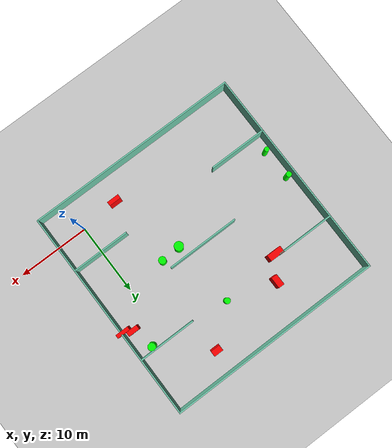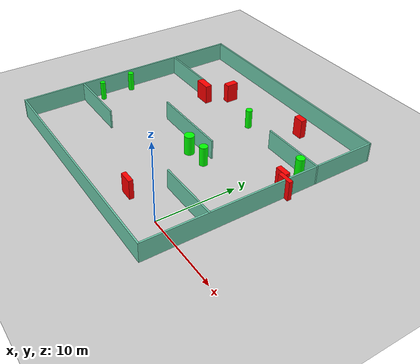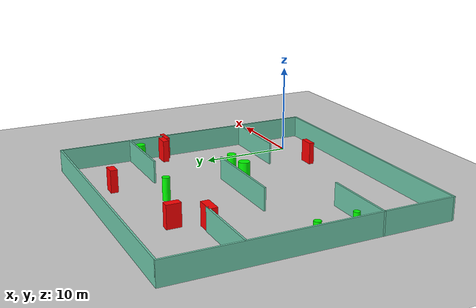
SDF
<sdf version="1.7">
 <world name="default">
  <light name="sun" type="directional">
   <pose>0 0 10 0 -0 0</pose>
   <diffuse>0.8 0.8 0.8 1</diffuse>
   <specular>0.2 0.2 0.2 1</specular>
   <attenuation>
    <range>1000</range>
    <constant>0.9</constant>
    <linear>0.01</linear>
    <quadratic>0.001</quadratic>
   </attenuation>
   <direction>-0.5 0.1 -0.9</direction>
   <spot><inner_angle>0</inner_angle><outer_angle>0</outer_angle><falloff>0</falloff></spot>
  </light>
  <model name="ground_plane">
   <static>1</static>
   <link name="link">
    <collision name="collision">
     <geometry><plane><normal>0 0 1</normal><size>100 100</size></plane></geometry>
     <surface>
      <contact><collide_bitmask>65535</collide_bitmask></contact>
      <friction><ode><mu>100</mu><mu2>50</mu2></ode></friction>
     </surface>
    </collision>
    <visual name="visual">
     <cast_shadows>0</cast_shadows>
     <geometry><plane><normal>0 0 1</normal><size>100 100</size></plane></geometry>
     <material>
      <script><uri>file://media/materials/scripts/gazebo.material</uri><name>Gazebo/Grey</name></script>
     </material>
    </visual>
   </link>
  </model>
  <gravity>0 0 -9.8</gravity>
  <magnetic_field>6e-06 2.3e-05 -4.2e-05</magnetic_field>
  <atmosphere type="adiabatic"/>
  <physics type="ode">
   <max_step_size>0.001</max_step_size>
   <real_time_factor>1</real_time_factor>
   <real_time_update_rate>1000</real_time_update_rate>
  </physics>
  <scene><ambient>0.4 0.4 0.4 1</ambient><background>0.7 0.7 0.7 1</background><shadows>1</shadows></scene>
  <spherical_coordinates>
   <surface_model>EARTH_WGS84</surface_model>
   <latitude_deg>0</latitude_deg>
   <longitude_deg>0</longitude_deg>
   <elevation>0</elevation>
   <heading_deg>0</heading_deg>
  </spherical_coordinates>
  <model name="my_base_walls">
   <link name="Wall_10">
    <collision name="Wall_10_Collision">
     <geometry><box><size>8.2 0.2 2.5</size></box></geometry>
     <pose>0 0 1.25 0 -0 0</pose>
    </collision>
    <visual name="Wall_10_Visual">
     <pose>0 0 1.25 0 -0 0</pose>
     <geometry><box><size>8.2 0.2 2.5</size></box></geometry>
     <material>
      <script><uri>file://media/materials/scripts/gazebo.material</uri><name>Gazebo/Grey</name></script>
      <ambient>0.435294 0.796078 0.67451 1</ambient>
     </material>
     <meta><layer>0</layer></meta>
    </visual>
    <pose>-11 -7 0 0 -0 0</pose>
   </link>
   <link name="Wall_12">
    <collision name="Wall_12_Collision">
     <geometry><box><size>8.2 0.2 2.5</size></box></geometry>
     <pose>0 0 1.25 0 -0 0</pose>
    </collision>
    <visual name="Wall_12_Visual">
     <pose>0 0 1.25 0 -0 0</pose>
     <geometry><box><size>8.2 0.2 2.5</size></box></geometry>
     <material>
      <script><uri>file://media/materials/scripts/gazebo.material</uri><name>Gazebo/Grey</name></script>
      <ambient>0.435294 0.796078 0.67451 1</ambient>
     </material>
     <meta><layer>0</layer></meta>
    </visual>
    <pose>-11 7 0 0 -0 0</pose>
   </link>
   <link name="Wall_14">
    <collision name="Wall_14_Collision">
     <geometry><box><size>8.2 0.2 2.5</size></box></geometry>
     <pose>0 0 1.25 0 -0 0</pose>
    </collision>
    <visual name="Wall_14_Visual">
     <pose>0 0 1.25 0 -0 0</pose>
     <geometry><box><size>8.2 0.2 2.5</size></box></geometry>
     <material>
      <script><uri>file://media/materials/scripts/gazebo.material</uri><name>Gazebo/Grey</name></script>
      <ambient>0.435294 0.796078 0.67451 1</ambient>
     </material>
     <meta><layer>0</layer></meta>
    </visual>
    <pose>11 7 0 0 -0 3.14159</pose>
   </link>
   <link name="Wall_16">
    <collision name="Wall_16_Collision">
     <geometry><box><size>10.2 0.2 2.5</size></box></geometry>
     <pose>0 0 1.25 0 -0 0</pose>
    </collision>
    <visual name="Wall_16_Visual">
     <pose>0 0 1.25 0 -0 0</pose>
     <geometry><box><size>10.2 0.2 2.5</size></box></geometry>
     <material>
      <script><uri>file://media/materials/scripts/gazebo.material</uri><name>Gazebo/Grey</name></script>
      <ambient>0.435294 0.796078 0.67451 1</ambient>
     </material>
     <meta><layer>0</layer></meta>
    </visual>
    <pose>0 0 0 0 -0 3.14159</pose>
   </link>
   <link name="Wall_2">
    <collision name="Wall_2_Collision">
     <geometry><box><size>30.2 0.2 2.5</size></box></geometry>
     <pose>0 0 1.25 0 -0 0</pose>
    </collision>
    <visual name="Wall_2_Visual">
     <pose>0 0 1.25 0 -0 0</pose>
     <geometry><box><size>30.2 0.2 2.5</size></box></geometry>
     <material>
      <script><uri>file://media/materials/scripts/gazebo.material</uri><name>Gazebo/Grey</name></script>
      <ambient>0.435294 0.796078 0.67451 1</ambient>
     </material>
     <meta><layer>0</layer></meta>
    </visual>
    <pose>0 -15 0 0 -0 3.14159</pose>
   </link>
   <link name="Wall_3">
    <collision name="Wall_3_Collision">
     <geometry><box><size>30.2 0.2 2.5</size></box></geometry>
     <pose>0 0 1.25 0 -0 0</pose>
    </collision>
    <visual name="Wall_3_Visual">
     <pose>0 0 1.25 0 -0 0</pose>
     <geometry><box><size>30.2 0.2 2.5</size></box></geometry>
     <material>
      <script><uri>file://media/materials/scripts/gazebo.material</uri><name>Gazebo/Grey</name></script>
      <ambient>0.435294 0.796078 0.67451 1</ambient>
     </material>
     <meta><layer>0</layer></meta>
    </visual>
    <pose>-15 0 0 0 -0 1.5708</pose>
   </link>
   <link name="Wall_4">
    <collision name="Wall_4_Collision">
     <geometry><box><size>30.2 0.2 2.5</size></box></geometry>
     <pose>0 0 1.25 0 -0 0</pose>
    </collision>
    <visual name="Wall_4_Visual">
     <pose>0 0 1.25 0 -0 0</pose>
     <geometry><box><size>30.2 0.2 2.5</size></box></geometry>
     <material>
      <script><uri>file://media/materials/scripts/gazebo.material</uri><name>Gazebo/Grey</name></script>
      <ambient>0.435294 0.796078 0.67451 1</ambient>
     </material>
     <meta><layer>0</layer></meta>
    </visual>
    <pose>0 15 0 0 -0 0</pose>
   </link>
   <link name="Wall_6">
    <collision name="Wall_6_Collision">
     <geometry><box><size>30.2 0.2 2.5</size></box></geometry>
     <pose>0 0 1.25 0 -0 0</pose>
    </collision>
    <visual name="Wall_6_Visual">
     <pose>0 0 1.25 0 -0 0</pose>
     <geometry><box><size>30.2 0.2 2.5</size></box></geometry>
     <material>
      <script><uri>file://media/materials/scripts/gazebo.material</uri><name>Gazebo/Grey</name></script>
      <ambient>0.435294 0.796078 0.67451 1</ambient>
     </material>
     <meta><layer>0</layer></meta>
    </visual>
    <pose>15 0 0 0 -0 1.5708</pose>
   </link>
   <link name="Wall_8">
    <collision name="Wall_8_Collision">
     <geometry><box><size>8.2 0.2 2.5</size></box></geometry>
     <pose>0 0 1.25 0 -0 0</pose>
    </collision>
    <visual name="Wall_8_Visual">
     <pose>0 0 1.25 0 -0 0</pose>
     <geometry><box><size>8.2 0.2 2.5</size></box></geometry>
     <material>
      <script><uri>file://media/materials/scripts/gazebo.material</uri><name>Gazebo/Grey</name></script>
      <ambient>0.435294 0.796078 0.67451 1</ambient>
     </material>
     <meta><layer>0</layer></meta>
    </visual>
    <pose>11 -7 0 0 -0 3.14159</pose>
   </link>
   <static>1</static>
   <pose>-11 11 0 0 -0 0</pose>
  </model>
  <model name="cylinder1">
   <static>1</static>
   <link name="link">
    <inertial>
     <mass>1</mass>
     <inertia><ixx>0.5</ixx><ixy>0</ixy><ixz>0</ixz><iyy>0.5</iyy><iyz>0</iyz><izz>1</izz></inertia>
    </inertial>
    <collision name="collision">
     <geometry><cylinder><radius>0.4106500544839046</radius><length>2.5</length></cylinder></geometry>
    </collision>
    <visual name="visual">
     <geometry><cylinder><radius>0.4106500544839046</radius><length>2.5</length></cylinder></geometry>
     <material>
      <ambient>0 1 0 1</ambient>
      <diffuse>0 1 0 1</diffuse>
      <specular>0.1 0.1 0.1 1</specular>
      <emissive>0 0 0 0</emissive>
     </material>
    </visual>
   </link>
   <pose>-9.054721459076424 18.60676451151015 1.25 0 0 0</pose>
  </model>
  <model name="cylinder2">
   <static>1</static>
   <link name="link">
    <inertial>
     <mass>1</mass>
     <inertia><ixx>0.5</ixx><ixy>0</ixy><ixz>0</ixz><iyy>0.5</iyy><iyz>0</iyz><izz>1</izz></inertia>
    </inertial>
    <collision name="collision">
     <geometry><cylinder><radius>0.5118480504453533</radius><length>2.5</length></cylinder></geometry>
    </collision>
    <visual name="visual">
     <geometry><cylinder><radius>0.5118480504453533</radius><length>2.5</length></cylinder></geometry>
     <material>
      <ambient>0 1 0 1</ambient>
      <diffuse>0 1 0 1</diffuse>
      <specular>0.1 0.1 0.1 1</specular>
      <emissive>0 0 0 0</emissive>
     </material>
    </visual>
   </link>
   <pose>-5.5968611159745905 9.599844244479723 1.25 0 0 0</pose>
  </model>
  <model name="cylinder3">
   <static>1</static>
   <link name="link">
    <inertial>
     <mass>1</mass>
     <inertia><ixx>0.5</ixx><ixy>0</ixy><ixz>0</ixz><iyy>0.5</iyy><iyz>0</iyz><izz>1</izz></inertia>
    </inertial>
    <collision name="collision">
     <geometry><cylinder><radius>0.33039707862885</radius><length>2.5</length></cylinder></geometry>
    </collision>
    <visual name="visual">
     <geometry><cylinder><radius>0.33039707862885</radius><length>2.5</length></cylinder></geometry>
     <material>
      <ambient>0 1 0 1</ambient>
      <diffuse>0 1 0 1</diffuse>
      <specular>0.1 0.1 0.1 1</specular>
      <emissive>0 0 0 0</emissive>
     </material>
    </visual>
   </link>
   <pose>-24.9286867326434 6.2790587428391635 1.25 0 0 0</pose>
  </model>
  <model name="cylinder4">
   <static>1</static>
   <link name="link">
    <inertial>
     <mass>1</mass>
     <inertia><ixx>0.5</ixx><ixy>0</ixy><ixz>0</ixz><iyy>0.5</iyy><iyz>0</iyz><izz>1</izz></inertia>
    </inertial>
    <collision name="collision">
     <geometry><cylinder><radius>0.37471390260744314</radius><length>2.5</length></cylinder></geometry>
    </collision>
    <visual name="visual">
     <geometry><cylinder><radius>0.37471390260744314</radius><length>2.5</length></cylinder></geometry>
     <material>
      <ambient>0 1 0 1</ambient>
      <diffuse>0 1 0 1</diffuse>
      <specular>0.1 0.1 0.1 1</specular>
      <emissive>0 0 0 0</emissive>
     </material>
    </visual>
   </link>
   <pose>-25.174728715863743 10.575330672027734 1.25 0 0 0</pose>
  </model>
  <model name="cylinder5">
   <static>1</static>
   <link name="link">
    <inertial>
     <mass>1</mass>
     <inertia><ixx>0.5</ixx><ixy>0</ixy><ixz>0</ixz><iyy>0.5</iyy><iyz>0</iyz><izz>1</izz></inertia>
    </inertial>
    <collision name="collision">
     <geometry><cylinder><radius>0.5292410444817788</radius><length>2.5</length></cylinder></geometry>
    </collision>
    <visual name="visual">
     <geometry><cylinder><radius>0.5292410444817788</radius><length>2.5</length></cylinder></geometry>
     <material>
      <ambient>0 1 0 1</ambient>
      <diffuse>0 1 0 1</diffuse>
      <specular>0.1 0.1 0.1 1</specular>
      <emissive>0 0 0 0</emissive>
     </material>
    </visual>
   </link>
   <pose>1.9531167254813795 17.451934820535882 1.25 0 0 0</pose>
  </model>
  <model name="cylinder6">
   <static>1</static>
   <link name="link">
    <inertial>
     <mass>1</mass>
     <inertia><ixx>0.5</ixx><ixy>0</ixy><ixz>0</ixz><iyy>0.5</iyy><iyz>0</iyz><izz>1</izz></inertia>
    </inertial>
    <collision name="collision">
     <geometry><cylinder><radius>0.6293454623836201</radius><length>2.5</length></cylinder></geometry>
    </collision>
    <visual name="visual">
     <geometry><cylinder><radius>0.6293454623836201</radius><length>2.5</length></cylinder></geometry>
     <material>
      <ambient>0 1 0 1</ambient>
      <diffuse>0 1 0 1</diffuse>
      <specular>0.1 0.1 0.1 1</specular>
      <emissive>0 0 0 0</emissive>
     </material>
    </visual>
   </link>
   <pose>-8.342117903220547 9.420620918297862 1.25 0 0 0</pose>
  </model>
  <model name="box1">
   <static>1</static>
   <link name="link">
    <inertial>
     <mass>1</mass>
     <inertia><ixx>0.083</ixx><ixy>0</ixy><ixz>0</ixz><iyy>0.083</iyy><iyz>0</iyz><izz>0.083</izz></inertia>
    </inertial>
    <collision name="collision">
     <geometry><box><size>1.6841102793904872 0.5659326188970812 2.5</size></box></geometry>
    </collision>
    <visual name="visual">
     <geometry><box><size>1.6841102793904872 0.5659326188970812 2.5</size></box></geometry>
     <material>
      <ambient>1 0 0 1</ambient>
      <diffuse>1 0 0 1</diffuse>
      <specular>0.1 0.1 0.1 1</specular>
      <emissive>0 0 0 0</emissive>
     </material>
    </visual>
    <sensor name="my_contact" type="contact">
     <contact><collision>box_collision</collision><topic>__default_topic__</topic></contact>
    </sensor>
   </link>
   <pose>-5.314515116517054 -0.28715394437896835 1.25 0 0 0</pose>
  </model>
  <model name="box2">
   <static>1</static>
   <link name="link">
    <inertial>
     <mass>1</mass>
     <inertia><ixx>0.083</ixx><ixy>0</ixy><ixz>0</ixz><iyy>0.083</iyy><iyz>0</iyz><izz>0.083</izz></inertia>
    </inertial>
    <collision name="collision">
     <geometry><box><size>1.3263633139924682 0.7950982696627695 2.5</size></box></geometry>
    </collision>
    <visual name="visual">
     <geometry><box><size>1.3263633139924682 0.7950982696627695 2.5</size></box></geometry>
     <material>
      <ambient>1 0 0 1</ambient>
      <diffuse>1 0 0 1</diffuse>
      <specular>0.1 0.1 0.1 1</specular>
      <emissive>0 0 0 0</emissive>
     </material>
    </visual>
    <sensor name="my_contact" type="contact">
     <contact><collision>box_collision</collision><topic>__default_topic__</topic></contact>
    </sensor>
   </link>
   <pose>-4.220622203774035 22.74779064343015 1.25 0 0 0</pose>
  </model>
  <model name="box3">
   <static>1</static>
   <link name="link">
    <inertial>
     <mass>1</mass>
     <inertia><ixx>0.083</ixx><ixy>0</ixy><ixz>0</ixz><iyy>0.083</iyy><iyz>0</iyz><izz>0.083</izz></inertia>
    </inertial>
    <collision name="collision">
     <geometry><box><size>1.5702150471236587 0.6550131446663956 2.5</size></box></geometry>
    </collision>
    <visual name="visual">
     <geometry><box><size>1.5702150471236587 0.6550131446663956 2.5</size></box></geometry>
     <material>
      <ambient>1 0 0 1</ambient>
      <diffuse>1 0 0 1</diffuse>
      <specular>0.1 0.1 0.1 1</specular>
      <emissive>0 0 0 0</emissive>
     </material>
    </visual>
    <sensor name="my_contact" type="contact">
     <contact><collision>box_collision</collision><topic>__default_topic__</topic></contact>
    </sensor>
   </link>
   <pose>2.645004022889978 14.419265566474603 1.25 0 0 0</pose>
  </model>
  <model name="box4">
   <static>1</static>
   <link name="link">
    <inertial>
     <mass>1</mass>
     <inertia><ixx>0.083</ixx><ixy>0</ixy><ixz>0</ixz><iyy>0.083</iyy><iyz>0</iyz><izz>0.083</izz></inertia>
    </inertial>
    <collision name="collision">
     <geometry><box><size>0.8355857179920998 1.5650551347938442 2.5</size></box></geometry>
    </collision>
    <visual name="visual">
     <geometry><box><size>0.8355857179920998 1.5650551347938442 2.5</size></box></geometry>
     <material>
      <ambient>1 0 0 1</ambient>
      <diffuse>1 0 0 1</diffuse>
      <specular>0.1 0.1 0.1 1</specular>
      <emissive>0 0 0 0</emissive>
     </material>
    </visual>
    <sensor name="my_contact" type="contact">
     <contact><collision>box_collision</collision><topic>__default_topic__</topic></contact>
    </sensor>
   </link>
   <pose>-15.599267574147273 20.50884042169574 1.25 0 0 0</pose>
  </model>
  <model name="box5">
   <static>1</static>
   <link name="link">
    <inertial>
     <mass>1</mass>
     <inertia><ixx>0.083</ixx><ixy>0</ixy><ixz>0</ixz><iyy>0.083</iyy><iyz>0</iyz><izz>0.083</izz></inertia>
    </inertial>
    <collision name="collision">
     <geometry><box><size>2.0695947255978133 0.888827692865219 2.5</size></box></geometry>
    </collision>
    <visual name="visual">
     <geometry><box><size>2.0695947255978133 0.888827692865219 2.5</size></box></geometry>
     <material>
      <ambient>1 0 0 1</ambient>
      <diffuse>1 0 0 1</diffuse>
      <specular>0.1 0.1 0.1 1</specular>
      <emissive>0 0 0 0</emissive>
     </material>
    </visual>
    <sensor name="my_contact" type="contact">
     <contact><collision>box_collision</collision><topic>__default_topic__</topic></contact>
    </sensor>
   </link>
   <pose>-17.53841876526745 17.603979146856695 1.25 0 0 0</pose>
  </model>
  <model name="box6">
   <static>1</static>
   <link name="link">
    <inertial>
     <mass>1</mass>
     <inertia><ixx>0.083</ixx><ixy>0</ixy><ixz>0</ixz><iyy>0.083</iyy><iyz>0</iyz><izz>0.083</izz></inertia>
    </inertial>
    <collision name="collision">
     <geometry><box><size>1.8268063999287731 0.5091142581962598 2.5</size></box></geometry>
    </collision>
    <visual name="visual">
     <geometry><box><size>1.8268063999287731 0.5091142581962598 2.5</size></box></geometry>
     <material>
      <ambient>1 0 0 1</ambient>
      <diffuse>1 0 0 1</diffuse>
      <specular>0.1 0.1 0.1 1</specular>
      <emissive>0 0 0 0</emissive>
     </material>
    </visual>
    <sensor name="my_contact" type="contact">
     <contact><collision>box_collision</collision><topic>__default_topic__</topic></contact>
    </sensor>
   </link>
   <pose>3.771998864189264 13.833036882614962 1.25 0 0 0</pose>
  </model>
 </world>
</sdf>
